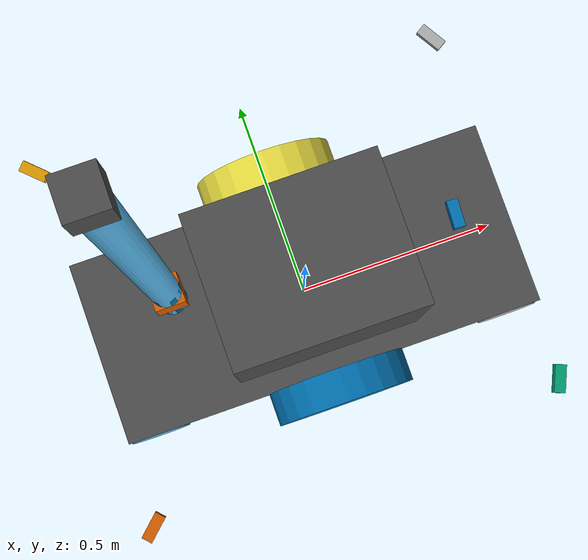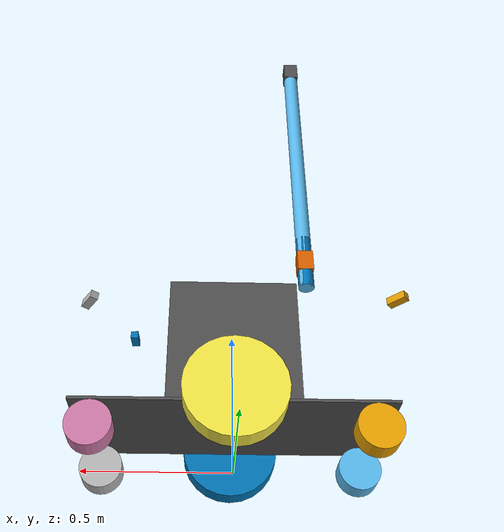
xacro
<?xml version="1.0" encoding="utf-8"?>

<!--
  Robot URDF files.

  Author: Rodolphe Perrin
-->

<robot name="Differential" xmlns:xacro="http://ros.org/wiki/xacro">
    <xacro:include filename="$(find diff_drive)/urdf/body.xacro"/>
    <xacro:include filename="$(find diff_drive)/urdf/sensors/cameras.xacro"/>
    <xacro:include filename="$(find diff_drive)/urdf/sensors/lidar.xacro"/>
    <xacro:include filename="$(find diff_drive)/urdf/sensors/imu.xacro"/>
    <xacro:include filename="$(find diff_drive)/urdf/platform/platform.xacro"/>
    <xacro:include filename="$(find diff_drive)/urdf/platform/retrofit.xacro"/>
</robot>

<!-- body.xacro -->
<!--
  Generic diff_drive platform model.

-->
<robot xmlns:xacro="http://ros.org/wiki/xacro">
  <xacro:include filename="$(find diff_drives)/urdf/solids.xacro"/>

  <link name="base_footprint"/>

  <link name="base_link"/>
  <joint name="base_link_joint" type="fixed">
    <parent link="base_footprint"/>
    <child link="base_link"/>
    <origin xyz="0.0 0.0 0.17" rpy="0 0 0"/>
  </joint>

  <link name="body">
    <xacro:solid_box x="0.45" y="0.36" z="0.45" mass="40.0">
      <color rgba="0.25 0.25 0.25 1.0"/>
    </xacro:solid_box>
  </link>
  <joint name="body_joint" type="fixed">
    <parent link="base_link"/>
    <child link="body"/>
    <origin xyz="0.0 0.0 0.235" rpy="0 0 0"/>
  </joint>

  <xacro:macro name="wheel" params="suffix x y z">
    <link name="wheel_${suffix}">
      <xacro:solid_cylinder radius="0.17" length="0.08" mass="1.0">
        <color rgba="0.75 0.75 0.75 1.0"/>
      </xacro:solid_cylinder>
    </link>
    <joint name="wheel_${suffix}_hinge" type="continuous">
      <parent link="base_link"/>
      <child link="wheel_${suffix}"/>
      <origin xyz="${x} ${y} ${z}" rpy="-1.5707 0 0"/>
      <axis xyz="0 0 1"/>
    </joint>
  </xacro:macro>

  <xacro:wheel suffix="left"  x="0.0" y="0.27" z="0.0"/>
  <xacro:wheel suffix="right" x="0.0" y="-0.27" z="0.0"/>

  <link name="casters_support">
    <xacro:solid_box x="1.06" y="0.46" z="0.01" mass="0.1">
      <color rgba="0.25 0.25 0.25 1.0"/>
    </xacro:solid_box>
  </link>
  <joint name="casters_support_joint" type="fixed">
    <parent link="body"/>
    <child link="casters_support"/>
    <origin xyz="0.0 0.0 -0.25" rpy="0 0 0" />
  </joint>

  <xacro:macro name="caster" params="suffix x y z">
    <link name="caster_${suffix}">
      <xacro:solid_sphere radius="0.075" mass="0.1" visible="false">
        <color rgba="0.75 0.75 0.75 1.0"/>
      </xacro:solid_sphere>
      <visual>
        <origin xyz="0 0 0" rpy="1.5707 0 0"/>
        <geometry>
          <cylinder radius="0.075" length="0.08"/>
        </geometry>
      </visual>
    </link>
    <joint name="caster_${suffix}_joint" type="fixed">
      <parent link="casters_support"/>
      <child link="caster_${suffix}"/>
      <origin xyz="${x} ${y} ${z}" rpy="0 0 0"/>
    </joint>
  </xacro:macro>

  <xacro:caster suffix="front_left"  x="0.455" y="0.19" z="-0.08"/>
  <xacro:caster suffix="front_right" x="0.455" y="-0.19" z="-0.08"/>
  <xacro:caster suffix="back_left"   x="-0.455" y="0.19" z="-0.08"/>
  <xacro:caster suffix="back_right"  x="-0.455" y="-0.19" z="-0.08"/>
</robot>

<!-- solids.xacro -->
<robot xmlns:xacro="http://ros.org/wiki/xacro">
  <xacro:macro name="solid" params="mass ixx iyy izz visible *shape *material">
    <xacro:if value="${visible}">
      <visual>
        <geometry>
          <xacro:insert_block name="shape"/>
        </geometry>
      </visual>
    </xacro:if>
    <collision>
      <geometry>
        <xacro:insert_block name="shape"/>
      </geometry>
    </collision>
    <inertial>
      <mass value="${mass}"/>
      <inertia
        ixx="${ixx}" ixy="0.0"    ixz="0.0"
                     iyy="${iyy}" iyz="0.0"
                                  izz="${izz}"
      />
    </inertial>
    <material>
      <xacro:insert_block name="material"/>
    </material>
  </xacro:macro>

  <xacro:macro name="solid_box" params="x y z mass visible:=true *material">
    <xacro:solid
      mass="${mass}"
      ixx="${0.0833333 * mass * (y*y + z*z)}"
      iyy="${0.0833333 * mass * (x*x + z*z)}"
      izz="${0.0833333 * mass * (x*x + y*y)}"
      visible="${visible}"
    >
      <box size="${x} ${y} ${z}"/>
      <xacro:insert_block name="material"/>
    </xacro:solid>
  </xacro:macro>

  <xacro:macro name="solid_cylinder" params="radius length mass visible:=true *material">
    <xacro:solid
      mass="${mass}"
      ixx="${0.0833333 * mass * (3 * radius * radius + length * length)}"
      iyy="${0.0833333 * mass * (3 * radius * radius + length * length)}"
      izz="${0.5 * mass * radius * radius}"
      visible="${visible}"
    >
      <cylinder radius="${radius}" length="${length}"/>
      <xacro:insert_block name="material"/>
    </xacro:solid>
  </xacro:macro>

  <xacro:macro name="solid_sphere" params="radius mass visible:=true *material">
    <xacro:solid
      mass="${mass}"
      ixx="${0.4 * mass * radius * radius}"
      iyy="${0.4 * mass * radius * radius}"
      izz="${0.4 * mass * radius * radius}"
      visible="${visible}"
    >
      <sphere radius="${radius}"/>
      <xacro:insert_block name="material"/>
    </xacro:solid>
  </xacro:macro>
</robot>

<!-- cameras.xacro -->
<robot xmlns:xacro="http://ros.org/wiki/xacro">
  <xacro:include filename="$(find whyvr)/urdf/sensors/realsense.xacro"/>
  <xacro:realsense suffix="center" x="0.353" y="0" z="0.09" roll="3.1415" pitch="0.02" yaw="-0.05"/>
  <xacro:realsense suffix="left" x="0.458" y="0.42" z="-0.01" roll="0.04" pitch="-0.12" yaw="0.55"/>
  <xacro:realsense suffix="right" x="0.458" y="-0.42" z="0.01" roll="0.02" pitch="0.05" yaw="-0.4"/>
  <xacro:realsense suffix="rear_right" x="-0.508" y="-0.43" z="0.01" roll="0.02" pitch="0.05" yaw="-0.82"/>
  <xacro:realsense suffix="rear_left" x="-0.508" y="0.42" z="0.01" roll="0.04" pitch="-0.12" yaw="0.8"/>
</robot>

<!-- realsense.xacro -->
<robot xmlns:xacro="http://ros.org/wiki/xacro">
  <xacro:include filename="$(find diff_drive)/urdf/solids.xacro"/>

  <xacro:property name="realsense_size_x" value="0.026"/>
  <xacro:property name="realsense_size_y" value="0.064"/>
  <xacro:property name="realsense_size_z" value="0.026"/>

  <xacro:macro name="realsense" params="suffix parent:=body x y z roll pitch yaw">
    <link name="camera_${suffix}_optical"/>
    <link name="camera_${suffix}_imu"/>
    <link name="camera_${suffix}">
      <xacro:solid_box x="${realsense_size_x}" y="${realsense_size_y}" z="${realsense_size_z}" mass="0.072">
        <color rgba="0.75 0.75 0.75 1.0"/>
      </xacro:solid_box>
    </link>
    <joint name="camera_${suffix}_${parent}_joint" type="fixed">
      <parent link="${parent}"/>
      <child link="camera_${suffix}"/>
      <origin xyz="${x} ${y} ${z}" rpy="${roll} ${pitch} ${yaw}"/>
    </joint>
    <joint name="camera_${suffix}_optical_joint" type="fixed">
      <parent link="camera_${suffix}"/>
      <child link="camera_${suffix}_optical"/>
      <!--
        Account for differences between camera and robot coordinate frames.
        See: https://www.ros.org/reps/rep-0103.html#coordinate-frame-conventions
      -->
      <origin xyz="0 0 0" rpy="-1.5707963267948966 0.0 -1.5707963267948966"/>
    </joint>
    <joint name="camera_${suffix}_imu_joint" type="fixed">
      <parent link="camera_${suffix}"/>
      <child link="camera_${suffix}_imu"/>
      <origin xyz="0 0 0" rpy="0 0 0"/>
    </joint>
  </xacro:macro>
</robot>

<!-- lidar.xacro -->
<robot xmlns:xacro="http://ros.org/wiki/xacro">
  <xacro:include filename="$(find whyvr)/urdf/solids.xacro"/>

  <xacro:property name="body_height2" value="0.65"/>
  <xacro:property name="pole_length2" value="0.23"/>
    <xacro:property name="body_height" value="0.65"/>
  <xacro:property name="pole_length" value="1.19"/>

  <link name="lidar_pole">
    <xacro:solid_cylinder radius="0.031" length="${pole_length}" mass="2.0">
      <color rgba="0.75 0.75 0.75 1.0"/>
    </xacro:solid_cylinder>
  </link>
  <joint name="pole_joint" type="fixed">
    <parent link="body"/>
    <child link="lidar_pole"/>
    <origin xyz="-0.29 0.0 ${0.5 * (body_height + pole_length)}" rpy="0 0 0"/>
  </joint>

  <xacro:property name="lidar_height" value="0.087"/>
  <link name="lidar">
    <xacro:solid_box x="0.062" y="0.062" z="${lidar_height}" mass="0.37">
      <color rgba="0.25 0.25 0.25 1.0"/>
    </xacro:solid_box>
  </link>
  <joint name="lidar_joint" type="fixed">
    <parent link="lidar_pole"/>
    <child link="lidar"/>
    <origin xyz="0.0 0.0 ${0.5 * (pole_length + lidar_height)}" rpy="0 0 0"/>
  </joint>

  <link name="laser"/>
  <joint name="laser_joint" type="fixed">
    <parent link="lidar"/>
    <child link="laser"/>
    <origin xyz="0 0 0.017" rpy="0 0 0"/>
  </joint>

  <link name="3d_lidar_pole">
    <xacro:solid_cylinder radius="0.031" length="${pole_length2}" mass="2.0">
      <color rgba="0.75 0.75 0.75 1.0"/>
    </xacro:solid_cylinder>
  </link>
  <joint name="3d_lidar_pole_joint" type="fixed">
    <parent link="body"/>
    <child link="3d_lidar_pole"/>
    <origin xyz="-0.29 0.0 ${0.5 * (body_height2 + pole_length2)}" rpy="0 0 0"/>
  </joint>

  <xacro:property name="lidar_height" value="0.087"/>
  <link name="os1_sensor">
    <xacro:solid_box x="0.062" y="0.062" z="${lidar_height}" mass="0.37">
      <color rgba="0.25 0.25 0.25 1.0"/>
    </xacro:solid_box>
  </link>
  <joint name="3d_lidar_joint" type="fixed">
    <parent link="3d_lidar_pole"/>
    <child link="os1_sensor"/>
    <origin xyz="0.0 0.0 0.0" rpy="0 0 0"/>
  </joint>

  <link name="os1_lidar"/>
  <joint name="3d_laser_joint" type="fixed">
    <parent link="os1_sensor"/>
    <child link="os1_lidar"/>
    <origin xyz="0 0 0.017" rpy="0 0 3.20"/>
  </joint>
</robot>

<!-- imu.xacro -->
<robot xmlns:xacro="http://ros.org/wiki/xacro">
  <link name="imu_link"/>
  <joint name="imu_joint" type="fixed">
    <parent link="base_footprint"/>
    <child link="imu_link"/>
    <origin xyz="0 0 0" rpy="0 0 0"/>
  </joint>
</robot>
